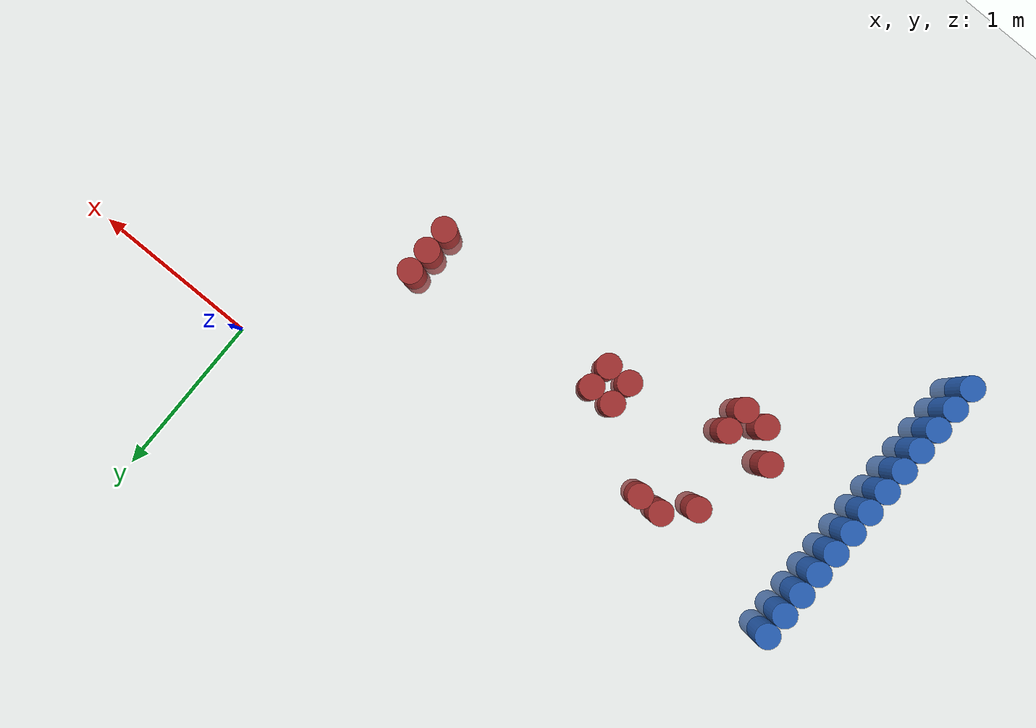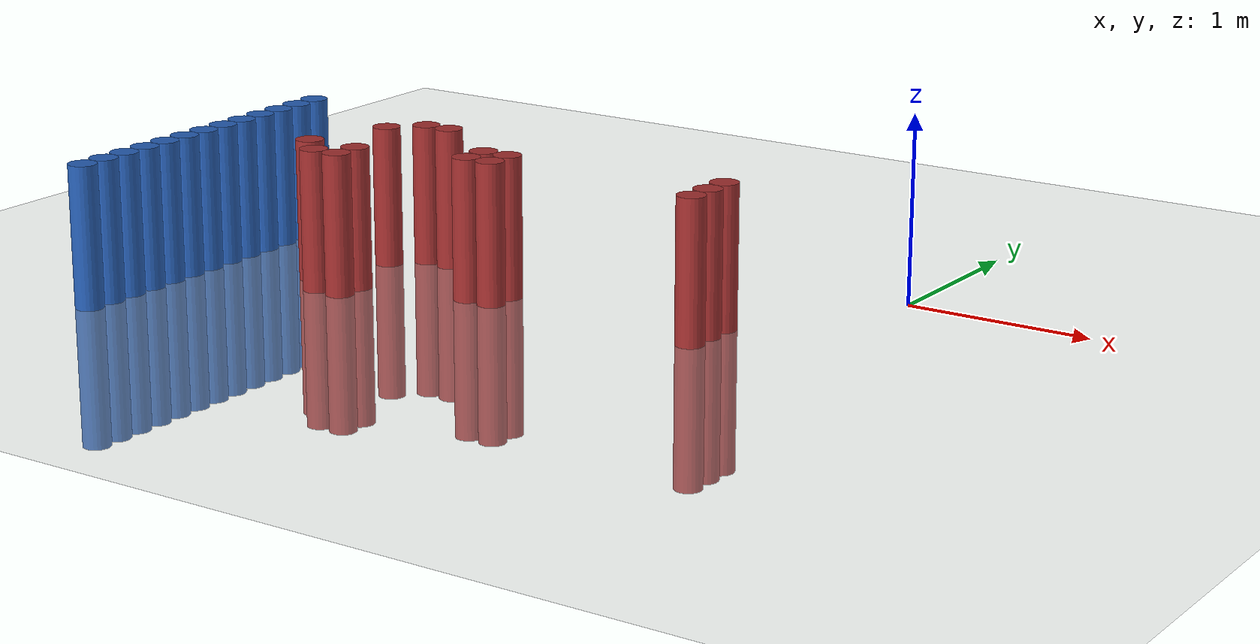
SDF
<sdf version="1.6">
 <world name="default">
  <model name="ground_plane">
   <static>1</static>
   <link name="link">
    <collision name="collision">
     <geometry><plane><normal>0 0 1</normal><size>100 100</size></plane></geometry>
     <surface><friction><ode><mu>100</mu><mu2>50</mu2></ode></friction></surface>
    </collision>
    <visual name="visual">
     <cast_shadows>0</cast_shadows>
     <geometry><plane><normal>0 0 1</normal><size>100 100</size></plane></geometry>
     <material>
      <script><uri>file://media/materials/scripts/gazebo.material</uri><name>Gazebo/Grey</name></script>
     </material>
    </visual>
   </link>
  </model>
  <model name="unit_cylinder_83">
   <static>1</static>
   <pose>-3.425000 -2.375000 0.000000 0.000000 0.000000 0.000000</pose>
   <link name="link">
    <inertial>
     <mass>1</mass>
     <inertia><ixx>0.145833</ixx><ixy>0</ixy><ixz>0</ixz><iyy>0.145833</iyy><iyz>0</iyz><izz>0.125</izz></inertia>
    </inertial>
    <collision name="collision">
     <geometry><cylinder><radius>0.075000</radius><length>1.5</length></cylinder></geometry>
    </collision>
    <visual name="visual">
     <geometry><cylinder><radius>0.075000</radius><length>1.5</length></cylinder></geometry>
     <material>
      <ambient>0.152000 0.379000 0.720000 1</ambient>
      <diffuse>0.152000 0.379000 0.720000 1</diffuse>
     </material>
     <material>
      <script><name>Gazebo/Grey</name><uri>file://media/materials/scripts/gazebo.material</uri></script>
     </material>
    </visual>
   </link>
  </model>
  <model name="unit_cylinder_85">
   <static>1</static>
   <pose>-3.425000 -2.225000 0.000000 0.000000 0.000000 0.000000</pose>
   <link name="link">
    <inertial>
     <mass>1</mass>
     <inertia><ixx>0.145833</ixx><ixy>0</ixy><ixz>0</ixz><iyy>0.145833</iyy><iyz>0</iyz><izz>0.125</izz></inertia>
    </inertial>
    <collision name="collision">
     <geometry><cylinder><radius>0.075000</radius><length>1.5</length></cylinder></geometry>
    </collision>
    <visual name="visual">
     <geometry><cylinder><radius>0.075000</radius><length>1.5</length></cylinder></geometry>
     <material>
      <ambient>0.152000 0.379000 0.720000 1</ambient>
      <diffuse>0.152000 0.379000 0.720000 1</diffuse>
     </material>
     <material>
      <script><name>Gazebo/Grey</name><uri>file://media/materials/scripts/gazebo.material</uri></script>
     </material>
    </visual>
   </link>
  </model>
  <model name="unit_cylinder_87">
   <static>1</static>
   <pose>-3.425000 -2.075000 0.000000 0.000000 0.000000 0.000000</pose>
   <link name="link">
    <inertial>
     <mass>1</mass>
     <inertia><ixx>0.145833</ixx><ixy>0</ixy><ixz>0</ixz><iyy>0.145833</iyy><iyz>0</iyz><izz>0.125</izz></inertia>
    </inertial>
    <collision name="collision">
     <geometry><cylinder><radius>0.075000</radius><length>1.5</length></cylinder></geometry>
    </collision>
    <visual name="visual">
     <geometry><cylinder><radius>0.075000</radius><length>1.5</length></cylinder></geometry>
     <material>
      <ambient>0.152000 0.379000 0.720000 1</ambient>
      <diffuse>0.152000 0.379000 0.720000 1</diffuse>
     </material>
     <material>
      <script><name>Gazebo/Grey</name><uri>file://media/materials/scripts/gazebo.material</uri></script>
     </material>
    </visual>
   </link>
  </model>
  <model name="unit_cylinder_89">
   <static>1</static>
   <pose>-3.425000 -1.925000 0.000000 0.000000 0.000000 0.000000</pose>
   <link name="link">
    <inertial>
     <mass>1</mass>
     <inertia><ixx>0.145833</ixx><ixy>0</ixy><ixz>0</ixz><iyy>0.145833</iyy><iyz>0</iyz><izz>0.125</izz></inertia>
    </inertial>
    <collision name="collision">
     <geometry><cylinder><radius>0.075000</radius><length>1.5</length></cylinder></geometry>
    </collision>
    <visual name="visual">
     <geometry><cylinder><radius>0.075000</radius><length>1.5</length></cylinder></geometry>
     <material>
      <ambient>0.152000 0.379000 0.720000 1</ambient>
      <diffuse>0.152000 0.379000 0.720000 1</diffuse>
     </material>
     <material>
      <script><name>Gazebo/Grey</name><uri>file://media/materials/scripts/gazebo.material</uri></script>
     </material>
    </visual>
   </link>
  </model>
  <model name="unit_cylinder_91">
   <static>1</static>
   <pose>-3.425000 -1.775000 0.000000 0.000000 0.000000 0.000000</pose>
   <link name="link">
    <inertial>
     <mass>1</mass>
     <inertia><ixx>0.145833</ixx><ixy>0</ixy><ixz>0</ixz><iyy>0.145833</iyy><iyz>0</iyz><izz>0.125</izz></inertia>
    </inertial>
    <collision name="collision">
     <geometry><cylinder><radius>0.075000</radius><length>1.5</length></cylinder></geometry>
    </collision>
    <visual name="visual">
     <geometry><cylinder><radius>0.075000</radius><length>1.5</length></cylinder></geometry>
     <material>
      <ambient>0.152000 0.379000 0.720000 1</ambient>
      <diffuse>0.152000 0.379000 0.720000 1</diffuse>
     </material>
     <material>
      <script><name>Gazebo/Grey</name><uri>file://media/materials/scripts/gazebo.material</uri></script>
     </material>
    </visual>
   </link>
  </model>
  <model name="unit_cylinder_93">
   <static>1</static>
   <pose>-3.425000 -1.625000 0.000000 0.000000 0.000000 0.000000</pose>
   <link name="link">
    <inertial>
     <mass>1</mass>
     <inertia><ixx>0.145833</ixx><ixy>0</ixy><ixz>0</ixz><iyy>0.145833</iyy><iyz>0</iyz><izz>0.125</izz></inertia>
    </inertial>
    <collision name="collision">
     <geometry><cylinder><radius>0.075000</radius><length>1.5</length></cylinder></geometry>
    </collision>
    <visual name="visual">
     <geometry><cylinder><radius>0.075000</radius><length>1.5</length></cylinder></geometry>
     <material>
      <ambient>0.152000 0.379000 0.720000 1</ambient>
      <diffuse>0.152000 0.379000 0.720000 1</diffuse>
     </material>
     <material>
      <script><name>Gazebo/Grey</name><uri>file://media/materials/scripts/gazebo.material</uri></script>
     </material>
    </visual>
   </link>
  </model>
  <model name="unit_cylinder_95">
   <static>1</static>
   <pose>-3.425000 -1.475000 0.000000 0.000000 0.000000 0.000000</pose>
   <link name="link">
    <inertial>
     <mass>1</mass>
     <inertia><ixx>0.145833</ixx><ixy>0</ixy><ixz>0</ixz><iyy>0.145833</iyy><iyz>0</iyz><izz>0.125</izz></inertia>
    </inertial>
    <collision name="collision">
     <geometry><cylinder><radius>0.075000</radius><length>1.5</length></cylinder></geometry>
    </collision>
    <visual name="visual">
     <geometry><cylinder><radius>0.075000</radius><length>1.5</length></cylinder></geometry>
     <material>
      <ambient>0.152000 0.379000 0.720000 1</ambient>
      <diffuse>0.152000 0.379000 0.720000 1</diffuse>
     </material>
     <material>
      <script><name>Gazebo/Grey</name><uri>file://media/materials/scripts/gazebo.material</uri></script>
     </material>
    </visual>
   </link>
  </model>
  <model name="unit_cylinder_97">
   <static>1</static>
   <pose>-3.425000 -1.325000 0.000000 0.000000 0.000000 0.000000</pose>
   <link name="link">
    <inertial>
     <mass>1</mass>
     <inertia><ixx>0.145833</ixx><ixy>0</ixy><ixz>0</ixz><iyy>0.145833</iyy><iyz>0</iyz><izz>0.125</izz></inertia>
    </inertial>
    <collision name="collision">
     <geometry><cylinder><radius>0.075000</radius><length>1.5</length></cylinder></geometry>
    </collision>
    <visual name="visual">
     <geometry><cylinder><radius>0.075000</radius><length>1.5</length></cylinder></geometry>
     <material>
      <ambient>0.152000 0.379000 0.720000 1</ambient>
      <diffuse>0.152000 0.379000 0.720000 1</diffuse>
     </material>
     <material>
      <script><name>Gazebo/Grey</name><uri>file://media/materials/scripts/gazebo.material</uri></script>
     </material>
    </visual>
   </link>
  </model>
  <model name="unit_cylinder_99">
   <static>1</static>
   <pose>-3.425000 -1.175000 0.000000 0.000000 0.000000 0.000000</pose>
   <link name="link">
    <inertial>
     <mass>1</mass>
     <inertia><ixx>0.145833</ixx><ixy>0</ixy><ixz>0</ixz><iyy>0.145833</iyy><iyz>0</iyz><izz>0.125</izz></inertia>
    </inertial>
    <collision name="collision">
     <geometry><cylinder><radius>0.075000</radius><length>1.5</length></cylinder></geometry>
    </collision>
    <visual name="visual">
     <geometry><cylinder><radius>0.075000</radius><length>1.5</length></cylinder></geometry>
     <material>
      <ambient>0.152000 0.379000 0.720000 1</ambient>
      <diffuse>0.152000 0.379000 0.720000 1</diffuse>
     </material>
     <material>
      <script><name>Gazebo/Grey</name><uri>file://media/materials/scripts/gazebo.material</uri></script>
     </material>
    </visual>
   </link>
  </model>
  <model name="unit_cylinder_101">
   <static>1</static>
   <pose>-3.425000 -1.025000 0.000000 0.000000 0.000000 0.000000</pose>
   <link name="link">
    <inertial>
     <mass>1</mass>
     <inertia><ixx>0.145833</ixx><ixy>0</ixy><ixz>0</ixz><iyy>0.145833</iyy><iyz>0</iyz><izz>0.125</izz></inertia>
    </inertial>
    <collision name="collision">
     <geometry><cylinder><radius>0.075000</radius><length>1.5</length></cylinder></geometry>
    </collision>
    <visual name="visual">
     <geometry><cylinder><radius>0.075000</radius><length>1.5</length></cylinder></geometry>
     <material>
      <ambient>0.152000 0.379000 0.720000 1</ambient>
      <diffuse>0.152000 0.379000 0.720000 1</diffuse>
     </material>
     <material>
      <script><name>Gazebo/Grey</name><uri>file://media/materials/scripts/gazebo.material</uri></script>
     </material>
    </visual>
   </link>
  </model>
  <model name="unit_cylinder_103">
   <static>1</static>
   <pose>-3.425000 -0.875000 0.000000 0.000000 0.000000 0.000000</pose>
   <link name="link">
    <inertial>
     <mass>1</mass>
     <inertia><ixx>0.145833</ixx><ixy>0</ixy><ixz>0</ixz><iyy>0.145833</iyy><iyz>0</iyz><izz>0.125</izz></inertia>
    </inertial>
    <collision name="collision">
     <geometry><cylinder><radius>0.075000</radius><length>1.5</length></cylinder></geometry>
    </collision>
    <visual name="visual">
     <geometry><cylinder><radius>0.075000</radius><length>1.5</length></cylinder></geometry>
     <material>
      <ambient>0.152000 0.379000 0.720000 1</ambient>
      <diffuse>0.152000 0.379000 0.720000 1</diffuse>
     </material>
     <material>
      <script><name>Gazebo/Grey</name><uri>file://media/materials/scripts/gazebo.material</uri></script>
     </material>
    </visual>
   </link>
  </model>
  <model name="unit_cylinder_105">
   <static>1</static>
   <pose>-3.425000 -0.725000 0.000000 0.000000 0.000000 0.000000</pose>
   <link name="link">
    <inertial>
     <mass>1</mass>
     <inertia><ixx>0.145833</ixx><ixy>0</ixy><ixz>0</ixz><iyy>0.145833</iyy><iyz>0</iyz><izz>0.125</izz></inertia>
    </inertial>
    <collision name="collision">
     <geometry><cylinder><radius>0.075000</radius><length>1.5</length></cylinder></geometry>
    </collision>
    <visual name="visual">
     <geometry><cylinder><radius>0.075000</radius><length>1.5</length></cylinder></geometry>
     <material>
      <ambient>0.152000 0.379000 0.720000 1</ambient>
      <diffuse>0.152000 0.379000 0.720000 1</diffuse>
     </material>
     <material>
      <script><name>Gazebo/Grey</name><uri>file://media/materials/scripts/gazebo.material</uri></script>
     </material>
    </visual>
   </link>
  </model>
  <model name="unit_cylinder_107">
   <static>1</static>
   <pose>-3.425000 -0.575000 0.000000 0.000000 0.000000 0.000000</pose>
   <link name="link">
    <inertial>
     <mass>1</mass>
     <inertia><ixx>0.145833</ixx><ixy>0</ixy><ixz>0</ixz><iyy>0.145833</iyy><iyz>0</iyz><izz>0.125</izz></inertia>
    </inertial>
    <collision name="collision">
     <geometry><cylinder><radius>0.075000</radius><length>1.5</length></cylinder></geometry>
    </collision>
    <visual name="visual">
     <geometry><cylinder><radius>0.075000</radius><length>1.5</length></cylinder></geometry>
     <material>
      <ambient>0.152000 0.379000 0.720000 1</ambient>
      <diffuse>0.152000 0.379000 0.720000 1</diffuse>
     </material>
     <material>
      <script><name>Gazebo/Grey</name><uri>file://media/materials/scripts/gazebo.material</uri></script>
     </material>
    </visual>
   </link>
  </model>
  <model name="unit_cylinder_208">
   <static>1</static>
   <pose>-3.425000 -1.925000 0.000000 0.000000 0.000000 0.000000</pose>
   <link name="link">
    <inertial>
     <mass>1</mass>
     <inertia><ixx>0.145833</ixx><ixy>0</ixy><ixz>0</ixz><iyy>0.145833</iyy><iyz>0</iyz><izz>0.125</izz></inertia>
    </inertial>
    <collision name="collision">
     <geometry><cylinder><radius>0.075000</radius><length>1.5</length></cylinder></geometry>
    </collision>
    <visual name="visual">
     <geometry><cylinder><radius>0.075000</radius><length>1.5</length></cylinder></geometry>
     <material>
      <ambient>0.152000 0.379000 0.720000 1</ambient>
      <diffuse>0.152000 0.379000 0.720000 1</diffuse>
     </material>
     <material>
      <script><name>Gazebo/Grey</name><uri>file://media/materials/scripts/gazebo.material</uri></script>
     </material>
    </visual>
   </link>
  </model>
  <model name="unit_cylinder_209">
   <static>1</static>
   <pose>-3.425000 -1.775000 0.000000 0.000000 0.000000 0.000000</pose>
   <link name="link">
    <inertial>
     <mass>1</mass>
     <inertia><ixx>0.145833</ixx><ixy>0</ixy><ixz>0</ixz><iyy>0.145833</iyy><iyz>0</iyz><izz>0.125</izz></inertia>
    </inertial>
    <collision name="collision">
     <geometry><cylinder><radius>0.075000</radius><length>1.5</length></cylinder></geometry>
    </collision>
    <visual name="visual">
     <geometry><cylinder><radius>0.075000</radius><length>1.5</length></cylinder></geometry>
     <material>
      <ambient>0.152000 0.379000 0.720000 1</ambient>
      <diffuse>0.152000 0.379000 0.720000 1</diffuse>
     </material>
     <material>
      <script><name>Gazebo/Grey</name><uri>file://media/materials/scripts/gazebo.material</uri></script>
     </material>
    </visual>
   </link>
  </model>
  <model name="unit_cylinder_210">
   <static>1</static>
   <pose>-3.425000 -1.625000 0.000000 0.000000 0.000000 0.000000</pose>
   <link name="link">
    <inertial>
     <mass>1</mass>
     <inertia><ixx>0.145833</ixx><ixy>0</ixy><ixz>0</ixz><iyy>0.145833</iyy><iyz>0</iyz><izz>0.125</izz></inertia>
    </inertial>
    <collision name="collision">
     <geometry><cylinder><radius>0.075000</radius><length>1.5</length></cylinder></geometry>
    </collision>
    <visual name="visual">
     <geometry><cylinder><radius>0.075000</radius><length>1.5</length></cylinder></geometry>
     <material>
      <ambient>0.152000 0.379000 0.720000 1</ambient>
      <diffuse>0.152000 0.379000 0.720000 1</diffuse>
     </material>
     <material>
      <script><name>Gazebo/Grey</name><uri>file://media/materials/scripts/gazebo.material</uri></script>
     </material>
    </visual>
   </link>
  </model>
  <model name="unit_cylinder_211">
   <static>1</static>
   <pose>-3.425000 -1.475000 0.000000 0.000000 0.000000 0.000000</pose>
   <link name="link">
    <inertial>
     <mass>1</mass>
     <inertia><ixx>0.145833</ixx><ixy>0</ixy><ixz>0</ixz><iyy>0.145833</iyy><iyz>0</iyz><izz>0.125</izz></inertia>
    </inertial>
    <collision name="collision">
     <geometry><cylinder><radius>0.075000</radius><length>1.5</length></cylinder></geometry>
    </collision>
    <visual name="visual">
     <geometry><cylinder><radius>0.075000</radius><length>1.5</length></cylinder></geometry>
     <material>
      <ambient>0.152000 0.379000 0.720000 1</ambient>
      <diffuse>0.152000 0.379000 0.720000 1</diffuse>
     </material>
     <material>
      <script><name>Gazebo/Grey</name><uri>file://media/materials/scripts/gazebo.material</uri></script>
     </material>
    </visual>
   </link>
  </model>
  <model name="unit_cylinder_212">
   <static>1</static>
   <pose>-3.425000 -1.325000 0.000000 0.000000 0.000000 0.000000</pose>
   <link name="link">
    <inertial>
     <mass>1</mass>
     <inertia><ixx>0.145833</ixx><ixy>0</ixy><ixz>0</ixz><iyy>0.145833</iyy><iyz>0</iyz><izz>0.125</izz></inertia>
    </inertial>
    <collision name="collision">
     <geometry><cylinder><radius>0.075000</radius><length>1.5</length></cylinder></geometry>
    </collision>
    <visual name="visual">
     <geometry><cylinder><radius>0.075000</radius><length>1.5</length></cylinder></geometry>
     <material>
      <ambient>0.152000 0.379000 0.720000 1</ambient>
      <diffuse>0.152000 0.379000 0.720000 1</diffuse>
     </material>
     <material>
      <script><name>Gazebo/Grey</name><uri>file://media/materials/scripts/gazebo.material</uri></script>
     </material>
    </visual>
   </link>
  </model>
  <model name="unit_cylinder_213">
   <static>1</static>
   <pose>-3.425000 -1.175000 0.000000 0.000000 0.000000 0.000000</pose>
   <link name="link">
    <inertial>
     <mass>1</mass>
     <inertia><ixx>0.145833</ixx><ixy>0</ixy><ixz>0</ixz><iyy>0.145833</iyy><iyz>0</iyz><izz>0.125</izz></inertia>
    </inertial>
    <collision name="collision">
     <geometry><cylinder><radius>0.075000</radius><length>1.5</length></cylinder></geometry>
    </collision>
    <visual name="visual">
     <geometry><cylinder><radius>0.075000</radius><length>1.5</length></cylinder></geometry>
     <material>
      <ambient>0.152000 0.379000 0.720000 1</ambient>
      <diffuse>0.152000 0.379000 0.720000 1</diffuse>
     </material>
     <material>
      <script><name>Gazebo/Grey</name><uri>file://media/materials/scripts/gazebo.material</uri></script>
     </material>
    </visual>
   </link>
  </model>
  <model name="unit_cylinder_214">
   <static>1</static>
   <pose>-3.425000 -1.025000 0.000000 0.000000 0.000000 0.000000</pose>
   <link name="link">
    <inertial>
     <mass>1</mass>
     <inertia><ixx>0.145833</ixx><ixy>0</ixy><ixz>0</ixz><iyy>0.145833</iyy><iyz>0</iyz><izz>0.125</izz></inertia>
    </inertial>
    <collision name="collision">
     <geometry><cylinder><radius>0.075000</radius><length>1.5</length></cylinder></geometry>
    </collision>
    <visual name="visual">
     <geometry><cylinder><radius>0.075000</radius><length>1.5</length></cylinder></geometry>
     <material>
      <ambient>0.152000 0.379000 0.720000 1</ambient>
      <diffuse>0.152000 0.379000 0.720000 1</diffuse>
     </material>
     <material>
      <script><name>Gazebo/Grey</name><uri>file://media/materials/scripts/gazebo.material</uri></script>
     </material>
    </visual>
   </link>
  </model>
  <model name="unit_cylinder_215">
   <static>1</static>
   <pose>-3.425000 -0.875000 0.000000 0.000000 0.000000 0.000000</pose>
   <link name="link">
    <inertial>
     <mass>1</mass>
     <inertia><ixx>0.145833</ixx><ixy>0</ixy><ixz>0</ixz><iyy>0.145833</iyy><iyz>0</iyz><izz>0.125</izz></inertia>
    </inertial>
    <collision name="collision">
     <geometry><cylinder><radius>0.075000</radius><length>1.5</length></cylinder></geometry>
    </collision>
    <visual name="visual">
     <geometry><cylinder><radius>0.075000</radius><length>1.5</length></cylinder></geometry>
     <material>
      <ambient>0.152000 0.379000 0.720000 1</ambient>
      <diffuse>0.152000 0.379000 0.720000 1</diffuse>
     </material>
     <material>
      <script><name>Gazebo/Grey</name><uri>file://media/materials/scripts/gazebo.material</uri></script>
     </material>
    </visual>
   </link>
  </model>
  <model name="unit_cylinder_216">
   <static>1</static>
   <pose>-3.425000 -0.725000 0.000000 0.000000 0.000000 0.000000</pose>
   <link name="link">
    <inertial>
     <mass>1</mass>
     <inertia><ixx>0.145833</ixx><ixy>0</ixy><ixz>0</ixz><iyy>0.145833</iyy><iyz>0</iyz><izz>0.125</izz></inertia>
    </inertial>
    <collision name="collision">
     <geometry><cylinder><radius>0.075000</radius><length>1.5</length></cylinder></geometry>
    </collision>
    <visual name="visual">
     <geometry><cylinder><radius>0.075000</radius><length>1.5</length></cylinder></geometry>
     <material>
      <ambient>0.152000 0.379000 0.720000 1</ambient>
      <diffuse>0.152000 0.379000 0.720000 1</diffuse>
     </material>
     <material>
      <script><name>Gazebo/Grey</name><uri>file://media/materials/scripts/gazebo.material</uri></script>
     </material>
    </visual>
   </link>
  </model>
  <model name="unit_cylinder_283">
   <static>1</static>
   <pose>-2.825000 -1.325000 0.000000 0.000000 0.000000 0.000000</pose>
   <link name="link">
    <inertial>
     <mass>1</mass>
     <inertia><ixx>0.145833</ixx><ixy>0</ixy><ixz>0</ixz><iyy>0.145833</iyy><iyz>0</iyz><izz>0.125</izz></inertia>
    </inertial>
    <collision name="collision">
     <geometry><cylinder><radius>0.075000</radius><length>1.5</length></cylinder></geometry>
    </collision>
    <visual name="visual">
     <geometry><cylinder><radius>0.075000</radius><length>1.5</length></cylinder></geometry>
     <material>
      <ambient>0.648000 0.192000 0.192000 1</ambient>
      <diffuse>0.648000 0.192000 0.192000 1</diffuse>
     </material>
     <material>
      <script><name>Gazebo/Grey</name><uri>file://media/materials/scripts/gazebo.material</uri></script>
     </material>
    </visual>
   </link>
  </model>
  <model name="unit_cylinder_288">
   <static>1</static>
   <pose>-2.675000 -1.475000 0.000000 0.000000 0.000000 0.000000</pose>
   <link name="link">
    <inertial>
     <mass>1</mass>
     <inertia><ixx>0.145833</ixx><ixy>0</ixy><ixz>0</ixz><iyy>0.145833</iyy><iyz>0</iyz><izz>0.125</izz></inertia>
    </inertial>
    <collision name="collision">
     <geometry><cylinder><radius>0.075000</radius><length>1.5</length></cylinder></geometry>
    </collision>
    <visual name="visual">
     <geometry><cylinder><radius>0.075000</radius><length>1.5</length></cylinder></geometry>
     <material>
      <ambient>0.648000 0.192000 0.192000 1</ambient>
      <diffuse>0.648000 0.192000 0.192000 1</diffuse>
     </material>
     <material>
      <script><name>Gazebo/Grey</name><uri>file://media/materials/scripts/gazebo.material</uri></script>
     </material>
    </visual>
   </link>
  </model>
  <model name="unit_cylinder_289">
   <static>1</static>
   <pose>-2.675000 -0.875000 0.000000 0.000000 0.000000 0.000000</pose>
   <link name="link">
    <inertial>
     <mass>1</mass>
     <inertia><ixx>0.145833</ixx><ixy>0</ixy><ixz>0</ixz><iyy>0.145833</iyy><iyz>0</iyz><izz>0.125</izz></inertia>
    </inertial>
    <collision name="collision">
     <geometry><cylinder><radius>0.075000</radius><length>1.5</length></cylinder></geometry>
    </collision>
    <visual name="visual">
     <geometry><cylinder><radius>0.075000</radius><length>1.5</length></cylinder></geometry>
     <material>
      <ambient>0.648000 0.192000 0.192000 1</ambient>
      <diffuse>0.648000 0.192000 0.192000 1</diffuse>
     </material>
     <material>
      <script><name>Gazebo/Grey</name><uri>file://media/materials/scripts/gazebo.material</uri></script>
     </material>
    </visual>
   </link>
  </model>
  <model name="unit_cylinder_292">
   <static>1</static>
   <pose>-2.525000 -1.475000 0.000000 0.000000 0.000000 0.000000</pose>
   <link name="link">
    <inertial>
     <mass>1</mass>
     <inertia><ixx>0.145833</ixx><ixy>0</ixy><ixz>0</ixz><iyy>0.145833</iyy><iyz>0</iyz><izz>0.125</izz></inertia>
    </inertial>
    <collision name="collision">
     <geometry><cylinder><radius>0.075000</radius><length>1.5</length></cylinder></geometry>
    </collision>
    <visual name="visual">
     <geometry><cylinder><radius>0.075000</radius><length>1.5</length></cylinder></geometry>
     <material>
      <ambient>0.648000 0.192000 0.192000 1</ambient>
      <diffuse>0.648000 0.192000 0.192000 1</diffuse>
     </material>
     <material>
      <script><name>Gazebo/Grey</name><uri>file://media/materials/scripts/gazebo.material</uri></script>
     </material>
    </visual>
   </link>
  </model>
  <model name="unit_cylinder_293">
   <static>1</static>
   <pose>-2.525000 -1.325000 0.000000 0.000000 0.000000 0.000000</pose>
   <link name="link">
    <inertial>
     <mass>1</mass>
     <inertia><ixx>0.145833</ixx><ixy>0</ixy><ixz>0</ixz><iyy>0.145833</iyy><iyz>0</iyz><izz>0.125</izz></inertia>
    </inertial>
    <collision name="collision">
     <geometry><cylinder><radius>0.075000</radius><length>1.5</length></cylinder></geometry>
    </collision>
    <visual name="visual">
     <geometry><cylinder><radius>0.075000</radius><length>1.5</length></cylinder></geometry>
     <material>
      <ambient>0.648000 0.192000 0.192000 1</ambient>
      <diffuse>0.648000 0.192000 0.192000 1</diffuse>
     </material>
     <material>
      <script><name>Gazebo/Grey</name><uri>file://media/materials/scripts/gazebo.material</uri></script>
     </material>
    </visual>
   </link>
  </model>
  <model name="unit_cylinder_294">
   <static>1</static>
   <pose>-2.525000 -0.725000 0.000000 0.000000 0.000000 0.000000</pose>
   <link name="link">
    <inertial>
     <mass>1</mass>
     <inertia><ixx>0.145833</ixx><ixy>0</ixy><ixz>0</ixz><iyy>0.145833</iyy><iyz>0</iyz><izz>0.125</izz></inertia>
    </inertial>
    <collision name="collision">
     <geometry><cylinder><radius>0.075000</radius><length>1.5</length></cylinder></geometry>
    </collision>
    <visual name="visual">
     <geometry><cylinder><radius>0.075000</radius><length>1.5</length></cylinder></geometry>
     <material>
      <ambient>0.648000 0.192000 0.192000 1</ambient>
      <diffuse>0.648000 0.192000 0.192000 1</diffuse>
     </material>
     <material>
      <script><name>Gazebo/Grey</name><uri>file://media/materials/scripts/gazebo.material</uri></script>
     </material>
    </visual>
   </link>
  </model>
  <model name="unit_cylinder_299">
   <static>1</static>
   <pose>-2.375000 -0.725000 0.000000 0.000000 0.000000 0.000000</pose>
   <link name="link">
    <inertial>
     <mass>1</mass>
     <inertia><ixx>0.145833</ixx><ixy>0</ixy><ixz>0</ixz><iyy>0.145833</iyy><iyz>0</iyz><izz>0.125</izz></inertia>
    </inertial>
    <collision name="collision">
     <geometry><cylinder><radius>0.075000</radius><length>1.5</length></cylinder></geometry>
    </collision>
    <visual name="visual">
     <geometry><cylinder><radius>0.075000</radius><length>1.5</length></cylinder></geometry>
     <material>
      <ambient>0.648000 0.192000 0.192000 1</ambient>
      <diffuse>0.648000 0.192000 0.192000 1</diffuse>
     </material>
     <material>
      <script><name>Gazebo/Grey</name><uri>file://media/materials/scripts/gazebo.material</uri></script>
     </material>
    </visual>
   </link>
  </model>
  <model name="unit_cylinder_303">
   <static>1</static>
   <pose>-1.925000 -1.175000 0.000000 0.000000 0.000000 0.000000</pose>
   <link name="link">
    <inertial>
     <mass>1</mass>
     <inertia><ixx>0.145833</ixx><ixy>0</ixy><ixz>0</ixz><iyy>0.145833</iyy><iyz>0</iyz><izz>0.125</izz></inertia>
    </inertial>
    <collision name="collision">
     <geometry><cylinder><radius>0.075000</radius><length>1.5</length></cylinder></geometry>
    </collision>
    <visual name="visual">
     <geometry><cylinder><radius>0.075000</radius><length>1.5</length></cylinder></geometry>
     <material>
      <ambient>0.648000 0.192000 0.192000 1</ambient>
      <diffuse>0.648000 0.192000 0.192000 1</diffuse>
     </material>
     <material>
      <script><name>Gazebo/Grey</name><uri>file://media/materials/scripts/gazebo.material</uri></script>
     </material>
    </visual>
   </link>
  </model>
  <model name="unit_cylinder_304">
   <static>1</static>
   <pose>-1.925000 -1.025000 0.000000 0.000000 0.000000 0.000000</pose>
   <link name="link">
    <inertial>
     <mass>1</mass>
     <inertia><ixx>0.145833</ixx><ixy>0</ixy><ixz>0</ixz><iyy>0.145833</iyy><iyz>0</iyz><izz>0.125</izz></inertia>
    </inertial>
    <collision name="collision">
     <geometry><cylinder><radius>0.075000</radius><length>1.5</length></cylinder></geometry>
    </collision>
    <visual name="visual">
     <geometry><cylinder><radius>0.075000</radius><length>1.5</length></cylinder></geometry>
     <material>
      <ambient>0.648000 0.192000 0.192000 1</ambient>
      <diffuse>0.648000 0.192000 0.192000 1</diffuse>
     </material>
     <material>
      <script><name>Gazebo/Grey</name><uri>file://media/materials/scripts/gazebo.material</uri></script>
     </material>
    </visual>
   </link>
  </model>
  <model name="unit_cylinder_307">
   <static>1</static>
   <pose>-1.775000 -1.175000 0.000000 0.000000 0.000000 0.000000</pose>
   <link name="link">
    <inertial>
     <mass>1</mass>
     <inertia><ixx>0.145833</ixx><ixy>0</ixy><ixz>0</ixz><iyy>0.145833</iyy><iyz>0</iyz><izz>0.125</izz></inertia>
    </inertial>
    <collision name="collision">
     <geometry><cylinder><radius>0.075000</radius><length>1.5</length></cylinder></geometry>
    </collision>
    <visual name="visual">
     <geometry><cylinder><radius>0.075000</radius><length>1.5</length></cylinder></geometry>
     <material>
      <ambient>0.648000 0.192000 0.192000 1</ambient>
      <diffuse>0.648000 0.192000 0.192000 1</diffuse>
     </material>
     <material>
      <script><name>Gazebo/Grey</name><uri>file://media/materials/scripts/gazebo.material</uri></script>
     </material>
    </visual>
   </link>
  </model>
  <model name="unit_cylinder_308">
   <static>1</static>
   <pose>-1.775000 -1.025000 0.000000 0.000000 0.000000 0.000000</pose>
   <link name="link">
    <inertial>
     <mass>1</mass>
     <inertia><ixx>0.145833</ixx><ixy>0</ixy><ixz>0</ixz><iyy>0.145833</iyy><iyz>0</iyz><izz>0.125</izz></inertia>
    </inertial>
    <collision name="collision">
     <geometry><cylinder><radius>0.075000</radius><length>1.5</length></cylinder></geometry>
    </collision>
    <visual name="visual">
     <geometry><cylinder><radius>0.075000</radius><length>1.5</length></cylinder></geometry>
     <material>
      <ambient>0.648000 0.192000 0.192000 1</ambient>
      <diffuse>0.648000 0.192000 0.192000 1</diffuse>
     </material>
     <material>
      <script><name>Gazebo/Grey</name><uri>file://media/materials/scripts/gazebo.material</uri></script>
     </material>
    </visual>
   </link>
  </model>
  <model name="unit_cylinder_353">
   <static>1</static>
   <pose>-0.575000 -1.175000 0.000000 0.000000 0.000000 0.000000</pose>
   <link name="link">
    <inertial>
     <mass>1</mass>
     <inertia><ixx>0.145833</ixx><ixy>0</ixy><ixz>0</ixz><iyy>0.145833</iyy><iyz>0</iyz><izz>0.125</izz></inertia>
    </inertial>
    <collision name="collision">
     <geometry><cylinder><radius>0.075000</radius><length>1.5</length></cylinder></geometry>
    </collision>
    <visual name="visual">
     <geometry><cylinder><radius>0.075000</radius><length>1.5</length></cylinder></geometry>
     <material>
      <ambient>0.648000 0.192000 0.192000 1</ambient>
      <diffuse>0.648000 0.192000 0.192000 1</diffuse>
     </material>
     <material>
      <script><name>Gazebo/Grey</name><uri>file://media/materials/scripts/gazebo.material</uri></script>
     </material>
    </visual>
   </link>
  </model>
  <model name="unit_cylinder_354">
   <static>1</static>
   <pose>-0.575000 -1.025000 0.000000 0.000000 0.000000 0.000000</pose>
   <link name="link">
    <inertial>
     <mass>1</mass>
     <inertia><ixx>0.145833</ixx><ixy>0</ixy><ixz>0</ixz><iyy>0.145833</iyy><iyz>0</iyz><izz>0.125</izz></inertia>
    </inertial>
    <collision name="collision">
     <geometry><cylinder><radius>0.075000</radius><length>1.5</length></cylinder></geometry>
    </collision>
    <visual name="visual">
     <geometry><cylinder><radius>0.075000</radius><length>1.5</length></cylinder></geometry>
     <material>
      <ambient>0.648000 0.192000 0.192000 1</ambient>
      <diffuse>0.648000 0.192000 0.192000 1</diffuse>
     </material>
     <material>
      <script><name>Gazebo/Grey</name><uri>file://media/materials/scripts/gazebo.material</uri></script>
     </material>
    </visual>
   </link>
  </model>
  <model name="unit_cylinder_355">
   <static>1</static>
   <pose>-0.575000 -0.875000 0.000000 0.000000 0.000000 0.000000</pose>
   <link name="link">
    <inertial>
     <mass>1</mass>
     <inertia><ixx>0.145833</ixx><ixy>0</ixy><ixz>0</ixz><iyy>0.145833</iyy><iyz>0</iyz><izz>0.125</izz></inertia>
    </inertial>
    <collision name="collision">
     <geometry><cylinder><radius>0.075000</radius><length>1.5</length></cylinder></geometry>
    </collision>
    <visual name="visual">
     <geometry><cylinder><radius>0.075000</radius><length>1.5</length></cylinder></geometry>
     <material>
      <ambient>0.648000 0.192000 0.192000 1</ambient>
      <diffuse>0.648000 0.192000 0.192000 1</diffuse>
     </material>
     <material>
      <script><name>Gazebo/Grey</name><uri>file://media/materials/scripts/gazebo.material</uri></script>
     </material>
    </visual>
   </link>
  </model>
 </world>
</sdf>
